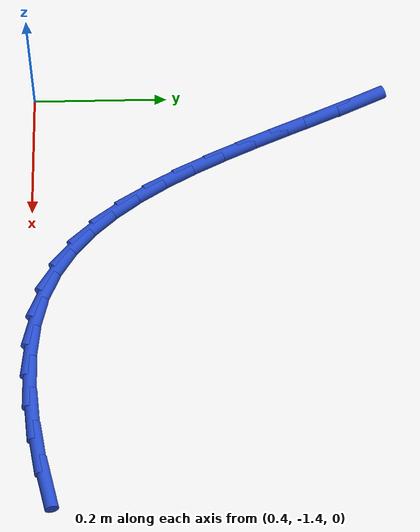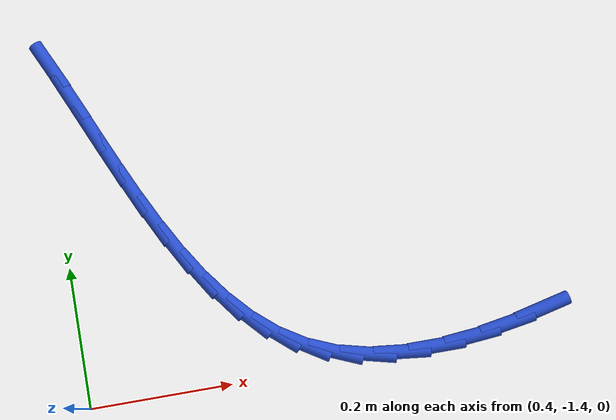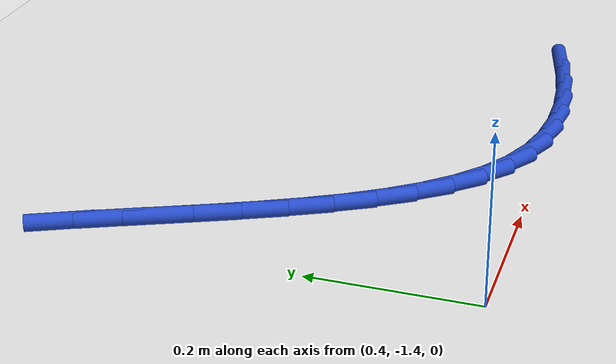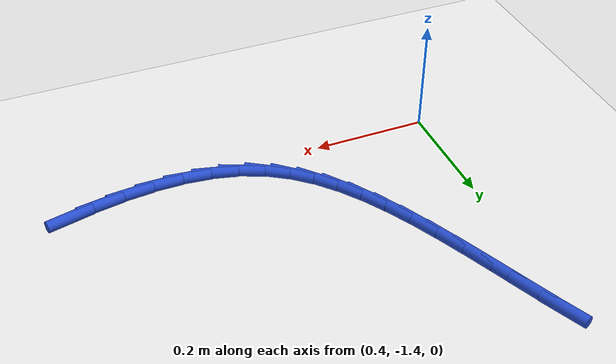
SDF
<sdf version="1.6">
 <world name="default">
  <model name="ground_plane">
   <static>1</static>
   <link name="link">
    <collision name="collision">
     <geometry><plane><normal>0 0 1</normal><size>100 100</size></plane></geometry>
     <surface><friction><ode><mu>100</mu><mu2>50</mu2></ode></friction></surface>
    </collision>
    <visual name="visual">
     <cast_shadows>0</cast_shadows>
     <geometry><plane><normal>0 0 1</normal><size>100 100</size></plane></geometry>
     <material>
      <script><uri>file://media/materials/scripts/gazebo.material</uri><name>Gazebo/WhiteGlow</name></script>
     </material>
    </visual>
   </link>
  </model>
  <model name="line">
   <link name="link_112">
    <pose>1.0445803092945871 -1.3717145860577875 0.01 0 1.57 0.22907371064607804</pose>
    <collision name="collision">
     <geometry><cylinder><radius>0.01</radius><length>0.08</length></cylinder></geometry>
    </collision>
    <visual name="visual">
     <material>
      <script><name>Gazebo/Blue</name><uri>file://media/materials/scripts/gazebo.material</uri></script>
     </material>
     <geometry><cylinder><radius>0.01</radius><length>0.08</length></cylinder></geometry>
    </visual>
   </link>
   <link name="link_113">
    <pose>0.9918727843821294 -1.3840042152979501 0.01 0 1.57 0.1643589819855765</pose>
    <collision name="collision">
     <geometry><cylinder><radius>0.01</radius><length>0.08</length></cylinder></geometry>
    </collision>
    <visual name="visual">
     <material>
      <script><name>Gazebo/Blue</name><uri>file://media/materials/scripts/gazebo.material</uri></script>
     </material>
     <geometry><cylinder><radius>0.01</radius><length>0.08</length></cylinder></geometry>
    </visual>
   </link>
   <link name="link_114">
    <pose>0.9397270057481617 -1.3926528608124782 0.01 0 1.57 0.08805058986358943</pose>
    <collision name="collision">
     <geometry><cylinder><radius>0.01</radius><length>0.08</length></cylinder></geometry>
    </collision>
    <visual name="visual">
     <material>
      <script><name>Gazebo/Blue</name><uri>file://media/materials/scripts/gazebo.material</uri></script>
     </material>
     <geometry><cylinder><radius>0.01</radius><length>0.08</length></cylinder></geometry>
    </visual>
   </link>
   <link name="link_115">
    <pose>0.888741551782174 -1.397153797906393 0.01 0 1.57 -0.0031181450126428925</pose>
    <collision name="collision">
     <geometry><cylinder><radius>0.01</radius><length>0.08</length></cylinder></geometry>
    </collision>
    <visual name="visual">
     <material>
      <script><name>Gazebo/Blue</name><uri>file://media/materials/scripts/gazebo.material</uri></script>
     </material>
     <geometry><cylinder><radius>0.01</radius><length>0.08</length></cylinder></geometry>
    </visual>
   </link>
   <link name="link_116">
    <pose>0.8395150008736612 -1.397000301884716 0.01 0 1.57 -0.1129113340773505</pose>
    <collision name="collision">
     <geometry><cylinder><radius>0.01</radius><length>0.08</length></cylinder></geometry>
    </collision>
    <visual name="visual">
     <material>
      <script><name>Gazebo/Blue</name><uri>file://media/materials/scripts/gazebo.material</uri></script>
     </material>
     <geometry><cylinder><radius>0.01</radius><length>0.08</length></cylinder></geometry>
    </visual>
   </link>
   <link name="link_117">
    <pose>0.7926459314121164 -1.3916856480524673 0.01 0 1.57 -0.24507047744409635</pose>
    <collision name="collision">
     <geometry><cylinder><radius>0.01</radius><length>0.08</length></cylinder></geometry>
    </collision>
    <visual name="visual">
     <material>
      <script><name>Gazebo/Blue</name><uri>file://media/materials/scripts/gazebo.material</uri></script>
     </material>
     <geometry><cylinder><radius>0.01</radius><length>0.08</length></cylinder></geometry>
    </visual>
   </link>
   <link name="link_118">
    <pose>0.7487329217870314 -1.3807031117146689 0.01 0 1.57 -0.4013195112964173</pose>
    <collision name="collision">
     <geometry><cylinder><radius>0.01</radius><length>0.08</length></cylinder></geometry>
    </collision>
    <visual name="visual">
     <material>
      <script><name>Gazebo/Blue</name><uri>file://media/materials/scripts/gazebo.material</uri></script>
     </material>
     <geometry><cylinder><radius>0.01</radius><length>0.08</length></cylinder></geometry>
    </visual>
   </link>
   <link name="link_119">
    <pose>0.7083543548516923 -1.3635684883493486 0.01 0 1.57 -0.5639220189144408</pose>
    <collision name="collision">
     <geometry><cylinder><radius>0.01</radius><length>0.08</length></cylinder></geometry>
    </collision>
    <visual name="visual">
     <material>
      <script><name>Gazebo/Blue</name><uri>file://media/materials/scripts/gazebo.material</uri></script>
     </material>
     <geometry><cylinder><radius>0.01</radius><length>0.08</length></cylinder></geometry>
    </visual>
   </link>
   <link name="link_120">
    <pose>0.6716105148384971 -1.3403307042980157 0.01 0 1.57 -0.7093256238647022</pose>
    <collision name="collision">
     <geometry><cylinder><radius>0.01</radius><length>0.08</length></cylinder></geometry>
    </collision>
    <visual name="visual">
     <material>
      <script><name>Gazebo/Blue</name><uri>file://media/materials/scripts/gazebo.material</uri></script>
     </material>
     <geometry><cylinder><radius>0.01</radius><length>0.08</length></cylinder></geometry>
    </visual>
   </link>
   <link name="link_121">
    <pose>0.6381159067386726 -1.3115803814750047 0.01 0 1.57 -0.8319488806794505</pose>
    <collision name="collision">
     <geometry><cylinder><radius>0.01</radius><length>0.08</length></cylinder></geometry>
    </collision>
    <visual name="visual">
     <material>
      <script><name>Gazebo/Blue</name><uri>file://media/materials/scripts/gazebo.material</uri></script>
     </material>
     <geometry><cylinder><radius>0.01</radius><length>0.08</length></cylinder></geometry>
    </visual>
   </link>
   <link name="link_122">
    <pose>0.6074633037608675 -1.2779323750459175 0.01 0 1.57 -0.9311923910917141</pose>
    <collision name="collision">
     <geometry><cylinder><radius>0.01</radius><length>0.08</length></cylinder></geometry>
    </collision>
    <visual name="visual">
     <material>
      <script><name>Gazebo/Blue</name><uri>file://media/materials/scripts/gazebo.material</uri></script>
     </material>
     <geometry><cylinder><radius>0.01</radius><length>0.08</length></cylinder></geometry>
    </visual>
   </link>
   <link name="link_123">
    <pose>0.5792454791137296 -1.2400015401763556 0.01 0 1.57 -1.0089017758092358</pose>
    <collision name="collision">
     <geometry><cylinder><radius>0.01</radius><length>0.08</length></cylinder></geometry>
    </collision>
    <visual name="visual">
     <material>
      <script><name>Gazebo/Blue</name><uri>file://media/materials/scripts/gazebo.material</uri></script>
     </material>
     <geometry><cylinder><radius>0.01</radius><length>0.08</length></cylinder></geometry>
    </visual>
   </link>
   <link name="link_124">
    <pose>0.5530552060059074 -1.1984027320319197 0.01 0 1.57 -1.0677573135413583</pose>
    <collision name="collision">
     <geometry><cylinder><radius>0.01</radius><length>0.08</length></cylinder></geometry>
    </collision>
    <visual name="visual">
     <material>
      <script><name>Gazebo/Blue</name><uri>file://media/materials/scripts/gazebo.material</uri></script>
     </material>
     <geometry><cylinder><radius>0.01</radius><length>0.08</length></cylinder></geometry>
    </visual>
   </link>
   <link name="link_125">
    <pose>0.52848525764605 -1.1537508057782133 0.01 0 1.57 -1.110351848471414</pose>
    <collision name="collision">
     <geometry><cylinder><radius>0.01</radius><length>0.08</length></cylinder></geometry>
    </collision>
    <visual name="visual">
     <material>
      <script><name>Gazebo/Blue</name><uri>file://media/materials/scripts/gazebo.material</uri></script>
     </material>
     <geometry><cylinder><radius>0.01</radius><length>0.08</length></cylinder></geometry>
    </visual>
   </link>
   <link name="link_126">
    <pose>0.5051284072428053 -1.1066606165808364 0.01 0 1.57 -1.1388020093674585</pose>
    <collision name="collision">
     <geometry><cylinder><radius>0.01</radius><length>0.08</length></cylinder></geometry>
    </collision>
    <visual name="visual">
     <material>
      <script><name>Gazebo/Blue</name><uri>file://media/materials/scripts/gazebo.material</uri></script>
     </material>
     <geometry><cylinder><radius>0.01</radius><length>0.08</length></cylinder></geometry>
    </visual>
   </link>
   <link name="link_127">
    <pose>0.4825774280048221 -1.057747019605392 0.01 0 1.57 -1.1546427124128629</pose>
    <collision name="collision">
     <geometry><cylinder><radius>0.01</radius><length>0.08</length></cylinder></geometry>
    </collision>
    <visual name="visual">
     <material>
      <script><name>Gazebo/Blue</name><uri>file://media/materials/scripts/gazebo.material</uri></script>
     </material>
     <geometry><cylinder><radius>0.01</radius><length>0.08</length></cylinder></geometry>
    </visual>
   </link>
   <link name="link_128">
    <pose>0.4604250931407485 -1.00762487001748 0.01 0 1.57 -1.1588372215809628</pose>
    <collision name="collision">
     <geometry><cylinder><radius>0.01</radius><length>0.08</length></cylinder></geometry>
    </collision>
    <visual name="visual">
     <material>
      <script><name>Gazebo/Blue</name><uri>file://media/materials/scripts/gazebo.material</uri></script>
     </material>
     <geometry><cylinder><radius>0.01</radius><length>0.08</length></cylinder></geometry>
    </visual>
   </link>
   <link name="link_129">
    <pose>0.43826417585923305 -0.9569090229827029 0.01 0 1.57 -1.151818590926548</pose>
    <collision name="collision">
     <geometry><cylinder><radius>0.01</radius><length>0.08</length></cylinder></geometry>
    </collision>
    <visual name="visual">
     <material>
      <script><name>Gazebo/Blue</name><uri>file://media/materials/scripts/gazebo.material</uri></script>
     </material>
     <geometry><cylinder><radius>0.01</radius><length>0.08</length></cylinder></geometry>
    </visual>
   </link>
   <link name="link_130">
    <pose>0.415687449368925 -0.9062143336666635 0.01 0 1.57 -1.1335288302235336</pose>
    <collision name="collision">
     <geometry><cylinder><radius>0.01</radius><length>0.08</length></cylinder></geometry>
    </collision>
    <visual name="visual">
     <material>
      <script><name>Gazebo/Blue</name><uri>file://media/materials/scripts/gazebo.material</uri></script>
     </material>
     <geometry><cylinder><radius>0.01</radius><length>0.08</length></cylinder></geometry>
    </visual>
   </link>
  </model>
 </world>
</sdf>
